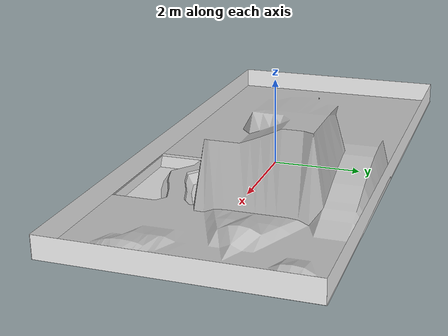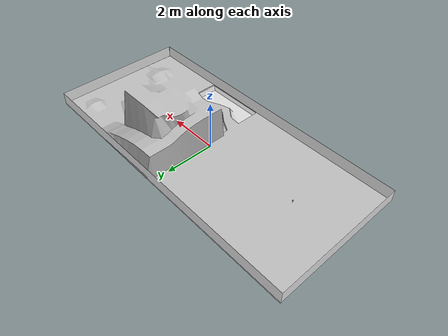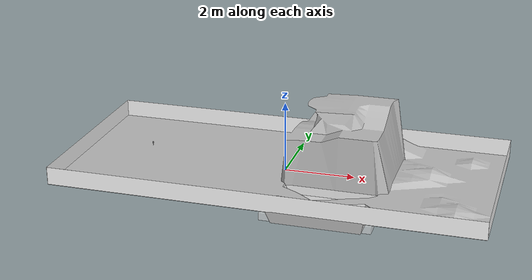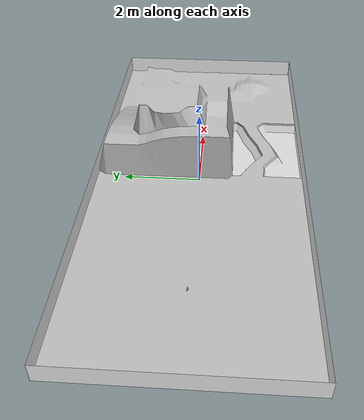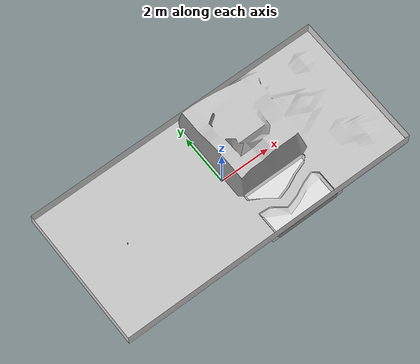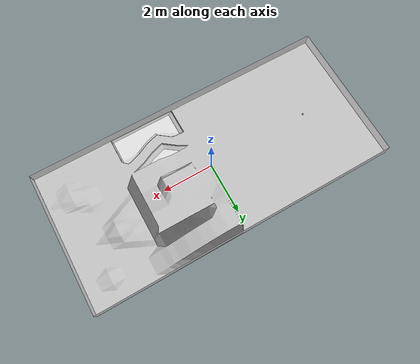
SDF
<sdf version="1.8">
 <world name="fast_world">
  <physics name="1ms" type="ignored">
   <max_step_size>0.005</max_step_size>
   <real_time_update_rate>200</real_time_update_rate>
   <real_time_factor>1.0</real_time_factor>
  </physics>
  <plugin filename="gz-sim-physics-system" name="gz::sim::systems::Physics">
   <engine><filename>gz-physics-dartsim-plugin</filename></engine>
  </plugin>
  <plugin filename="gz-sim-user-commands-system" name="gz::sim::systems::UserCommands"/>
  <plugin filename="gz-sim-scene-broadcaster-system" name="gz::sim::systems::SceneBroadcaster"/>
  <plugin filename="gz-sim-sensors-system" name="gz::sim::systems::Sensors">
   <render_engine>ogre</render_engine>
  </plugin>
  <plugin filename="gz-sim-wind-effects-system" name="gz::sim::systems::WindEffects">
   <force_approximation_scaling_factor>1</force_approximation_scaling_factor>
   <horizontal>
    <magnitude>
     <time_for_rise>0.01</time_for_rise>
     <sin><amplitude_percent>0.8</amplitude_percent><period>4.72</period></sin>
    </magnitude>
    <direction>
     <time_for_rise>0.01</time_for_rise>
     <sin><amplitude>137</amplitude><period>10</period></sin>
    </direction>
   </horizontal>
  </plugin>
  <wind><linear_velocity>0 1 0</linear_velocity></wind>
  <plugin filename="libResetSimPlugin.so" name="reset_plugin::ResetSimPlugin"/>
  <scene><ambient>0.4 0.4 0.4 1</ambient><background>0.7 0.7 0.7 1</background><shadows>false</shadows></scene>
  <light type="directional" name="sun">
   <cast_shadows>false</cast_shadows>
   <pose>0 0 10 0 0 0</pose>
   <diffuse>0.8 0.8 0.8 1</diffuse>
   <specular>0.2 0.2 0.2 1</specular>
   <direction>-0.5 0.1 -0.9</direction>
  </light>
  <include>
   <uri>model://models/wall_short</uri>
   <name>north_wall</name>
   <pose>6 0 0.25 1.57 0 -1.57</pose>
   <static>true</static>
  </include>
  <include>
   <uri>model://models/wall_short</uri>
   <name>south_wall</name>
   <pose>-6 0 0.25 1.57 0 1.57</pose>
   <static>true</static>
  </include>
  <include>
   <uri>model://models/wall_long</uri>
   <name>east_wall</name>
   <pose>0 -2.75 0.25 1.57 0 3.14</pose>
   <static>true</static>
  </include>
  <include>
   <uri>model://models/wall_long</uri>
   <name>west_wall</name>
   <pose>0 2.75 0.25 1.57 0 0</pose>
   <static>true</static>
  </include>
  <include>
   <uri>model://models/terrain</uri>
   <name>base_map</name>
   <pose>0 0 0 0 0 1.57</pose>
   <static>true</static>
  </include>
  <include>
   <uri>model://models/pedestrian_npc</uri>
   <name>pedestrian_npc</name>
   <pose>-4 0 0.3 0 0 0</pose>
   <static>false</static>
  </include>
  <include>
   <uri>model://models/water</uri>
   <name>water</name>
   <static>true</static>
   <pose>1.56 -1.64 -0.15 0 0 0</pose>
  </include>
  <include><uri>model://models/wind_sock</uri><name>wind_sock</name><pose>0.9 1.2 0.3 0 0 0</pose></include>
 </world>
</sdf>

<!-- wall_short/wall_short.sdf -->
<sdf version="1.8">
    <model name="wall_short">
        <static>true</static>
        <link name="wall_short_link">
            <collision name="collision">
                <geometry>
                    <plane>
                        <normal>0 0 1</normal>
                        <size>5.5 0.5</size>
                    </plane>
                </geometry>
            </collision>

            <visual name="visual">
                <geometry>
                    <plane>
                        <normal>0 0 1</normal>
                        <size>5.5 0.5</size>
                    </plane>
                </geometry>
                <material>
                    <ambient>1 1 1 1</ambient>
                    <diffuse>1 1 1 1</diffuse>
                    <specular>0.1 0.1 0.1 1</specular>

                    <pbr>
                        <metal>
                            <albedo_map>forest.png</albedo_map>
                        </metal>
                    </pbr>
                </material>
            </visual>
        </link>
    </model>
</sdf>

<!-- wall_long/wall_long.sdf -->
<sdf version="1.8">
    <model name="wall_short">
        <static>true</static>
        <link name="wall_long_link">
            <collision name="collision">
                <geometry>
                    <plane>
                        <normal>0 0 1</normal>
                        <size>12 0.5</size>
                    </plane>
                </geometry>
            </collision>

            <visual name="visual">
                <geometry>
                    <plane>
                        <normal>0 0 1</normal>
                        <size>12 0.5</size>
                    </plane>
                </geometry>
                <material>
                    <ambient>1 1 1 1</ambient>
                    <diffuse>1 1 1 1</diffuse>
                    <specular>0.1 0.1 0.1 1</specular>

                    <pbr>
                        <metal>
                            <albedo_map>extended_forest.png</albedo_map>
                        </metal>
                    </pbr>
                </material>
            </visual>
        </link>
    </model>
</sdf>

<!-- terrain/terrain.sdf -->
<sdf version="1.8">
    <model name="terrain">
        <static>true</static>
        <link name="terrain_link">
            <collision name="collision">
                <geometry>
                    <mesh>
                        <uri>assets/Terrain_2023_v2.dae</uri>
                        <scale>12.0 12.0 12.0</scale>
                    </mesh>
                </geometry>
                <surface>
                    <friction>
                        <ode>
                            <mu>100</mu>
                            <mu2>100</mu2>
                        </ode>
                    </friction>
                </surface>
            </collision>

            <visual name="visual">
                <geometry>
                    <mesh>
                        <uri>assets/Terrain_2023_v2.dae</uri>
                        <scale>12.0 12.0 12.0</scale>
                    </mesh>
                </geometry>
            </visual>
        </link>
    </model>
</sdf>

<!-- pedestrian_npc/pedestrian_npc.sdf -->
<sdf version="1.8">
    <model name="pedestrian_npc">
        <static>false</static>
        <link name="pedestrian_npc_link">
            <inertial>
                <mass>1000</mass>
                <inertia>
                    <ixx>0.433</ixx>
                    <ixy>0.0</ixy>
                    <ixz>0.0</ixz>
                    <iyy>0.433</iyy>
                    <iyz>0.0</iyz>
                    <izz>0.433</izz>
                </inertia>
            </inertial>
            <collision name="collision">
                <pose>0 0 0.06545 0 0 0</pose>
                <geometry>
                    <box>
                        <size>0.0385 0.0616 0.1309</size>
                    </box>
                </geometry>
            </collision>

            <visual name="visual">
                <pose>0 0 0 0 0 0</pose>
                <geometry>
                    <mesh>
                        <uri>assets/walking.dae</uri>
                        <scale>0.07 0.07 0.07</scale>
                    </mesh>
                </geometry>
            </visual>
        </link>
        <!-- Set up to recieve cmd_vel messages -->
        <plugin filename="gz-sim-velocity-control-system"
            name="gz::sim::systems::VelocityControl">
            <link_name>pedestrian_npc_link</link_name>
        </plugin>

        <plugin filename="gz-sim-pose-publisher-system"
            name="gz::sim::systems::PosePublisher">

            <publish_model_pose>true</publish_model_pose>
            <publish_link_pose>false</publish_link_pose>
            <publish_sensor_pose>false</publish_sensor_pose>
            <publish_collision_pose>false</publish_collision_pose>
            <publish_visual_pose>false</publish_visual_pose>

            <update_frequency>20</update_frequency>

            <use_pose_vector_msg>false</use_pose_vector_msg>

        </plugin>
    </model>
</sdf>

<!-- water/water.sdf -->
<sdf version="1.8">
    <model name="water">
        <static>true</static>
        <link name="water_link">
            <collision name='collision'>
                <pose>0 0 0.04 0 0 0</pose>
                <geometry>
                    <box>
                        <size>0.2 0.01 0.16</size>
                    </box>
                </geometry>
            </collision>

            <visual name='visual'>
                <geometry>
                    <box>
                        <size>3 2.25 0.2</size>
                    </box>
                </geometry>
                <transparency> 0.5 </transparency>
                <material>
                    <ambient>0 0 1 1</ambient>
                    <diffuse>1 1 1 1</diffuse>
                    <specular>0 0.5 0 0</specular>
                    <emissive>0 0 0 1</emissive>
                </material>
            </visual>
        </link>
    </model>
</sdf>

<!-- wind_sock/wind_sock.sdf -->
<sdf version="1.8">
    <model name="wind_sock">
      <static>false</static>
      <link name="roof">
        <pose>0 0 0.5 0 0 0</pose>
        <collision name="collision">
          <geometry>
            <box>
              <size>1 1 0.1</size>
            </box>
          </geometry>
          <surface>
          </surface>
        </collision>
      </link>
      <joint name="roofJoint" type="fixed">
        <parent>world</parent>
        <child>roof</child>
      </joint>
      <link name="sphere_1">
        <pose>0 0 0.93 0 0 0</pose>
        <enable_wind>true</enable_wind>
        <collision name="collision">
          <geometry>
            <sphere>
              <radius>0.02</radius>
            </sphere>
          </geometry>
        </collision>
        <visual name="visual">
          <geometry>
            <sphere>
              <radius>0.02</radius>
            </sphere>
          </geometry>
          <material>
            <ambient>1.0 0 0 1.0</ambient>
            <diffuse>.421 0.225 0.0 1.0</diffuse>
            <specular>1.0 0 0 1.0</specular>
          </material>
        </visual>
      </link>
      <joint name="sphere_1_joint" type="ball">
        <parent>roof</parent>
        <child>sphere_1</child>
      </joint>
      <link name="sphere_2">
        <pose>0 0 0.89 0 0 0</pose>
        <enable_wind>true</enable_wind>
        <collision name="collision">
          <geometry>
            <sphere>
              <radius>0.02</radius>
            </sphere>
          </geometry>
        </collision>
        <visual name="visual">
          <geometry>
            <sphere>
              <radius>0.02</radius>
            </sphere>
          </geometry>
          <material>
            <ambient>1.0 0 0 1.0</ambient>
            <diffuse>.421 0.225 0.0 1.0</diffuse>
            <specular>1.0 0 0 1.0</specular>
          </material>
        </visual>
      </link>
      <joint name="sphere_2_joint" type="ball">
        <parent>sphere_1</parent>
        <child>sphere_2</child>
      </joint>
      <link name="sphere_3">
        <pose>0 0 0.85 0 0 0</pose>
        <enable_wind>true</enable_wind>
        <collision name="collision">
          <geometry>
            <sphere>
              <radius>0.02</radius>
            </sphere>
          </geometry>
        </collision>
        <visual name="visual">
          <geometry>
            <sphere>
              <radius>0.02</radius>
            </sphere>
          </geometry>
          <material>
            <ambient>1.0 0 0 1.0</ambient>
            <diffuse>.421 0.225 0.0 1.0</diffuse>
            <specular>1.0 0 0 1.0</specular>
          </material>
        </visual>
      </link>
      <joint name="sphere_3_joint" type="ball">
        <parent>sphere_2</parent>
        <child>sphere_3</child>
      </joint>
      <link name="sphere_4">
        <pose>0 0 0.81 0 0 0</pose>
        <enable_wind>true</enable_wind>
        <collision name="collision">
          <geometry>
            <sphere>
              <radius>0.02</radius>
            </sphere>
          </geometry>
        </collision>
        <visual name="visual">
          <geometry>
            <sphere>
              <radius>0.02</radius>
            </sphere>
          </geometry>
          <material>
            <ambient>1.0 0 0 1.0</ambient>
            <diffuse>.421 0.225 0.0 1.0</diffuse>
            <specular>1.0 0 0 1.0</specular>
          </material>
        </visual>
      </link>
      <joint name="sphere_4_joint" type="ball">
        <parent>sphere_3</parent>
        <child>sphere_4</child>
      </joint>
      <link name="sphere_5">
        <pose>0 0 0.77 0 0 0</pose>
        <enable_wind>true</enable_wind>
        <collision name="collision">
          <geometry>
            <sphere>
              <radius>0.02</radius>
            </sphere>
          </geometry>
        </collision>
        <visual name="visual">
          <geometry>
            <sphere>
              <radius>0.02</radius>
            </sphere>
          </geometry>
          <material>
            <ambient>1.0 0 0 1.0</ambient>
            <diffuse>.421 0.225 0.0 1.0</diffuse>
            <specular>1.0 0 0 1.0</specular>
          </material>
        </visual>
      </link>
      <joint name="sphere_5_joint" type="ball">
        <parent>sphere_4</parent>
        <child>sphere_5</child>
      </joint>
      <link name="sphere_6">
        <pose>0 0 0.73 0 0 0</pose>
        <enable_wind>true</enable_wind>
        <collision name="collision">
          <geometry>
            <sphere>
              <radius>0.02</radius>
            </sphere>
          </geometry>
        </collision>
        <visual name="visual">
          <geometry>
            <sphere>
              <radius>0.02</radius>
            </sphere>
          </geometry>
          <material>
            <ambient>1.0 0 0 1.0</ambient>
            <diffuse>.421 0.225 0.0 1.0</diffuse>
            <specular>1.0 0 0 1.0</specular>
          </material>
        </visual>
      </link>
      <joint name="sphere_6_joint" type="ball">
        <parent>sphere_5</parent>
        <child>sphere_6</child>
      </joint>
      <link name="sphere_7">
        <pose>0 0 0.69 0 0 0</pose>
        <enable_wind>true</enable_wind>
        <collision name="collision">
          <geometry>
            <sphere>
              <radius>0.02</radius>
            </sphere>
          </geometry>
        </collision>
        <visual name="visual">
          <geometry>
            <sphere>
              <radius>0.02</radius>
            </sphere>
          </geometry>
          <material>
            <ambient>1.0 0 0 1.0</ambient>
            <diffuse>.421 0.225 0.0 1.0</diffuse>
            <specular>1.0 0 0 1.0</specular>
          </material>
        </visual>
      </link>
      <joint name="sphere_7_joint" type="ball">
        <parent>sphere_6</parent>
        <child>sphere_7</child>
      </joint>
      <link name="sphere_8">
        <pose>0 0 0.65 0 0 0</pose>
        <enable_wind>true</enable_wind>
        <collision name="collision">
          <geometry>
            <sphere>
              <radius>0.02</radius>
            </sphere>
          </geometry>
        </collision>
        <visual name="visual">
          <geometry>
            <sphere>
              <radius>0.02</radius>
            </sphere>
          </geometry>
          <material>
            <ambient>1.0 0 0 1.0</ambient>
            <diffuse>.421 0.225 0.0 1.0</diffuse>
            <specular>1.0 0 0 1.0</specular>
          </material>
        </visual>
      </link>
      <joint name="sphere_8_joint" type="ball">
        <parent>sphere_7</parent>
        <child>sphere_8</child>
      </joint>
      <link name="sphere_9">
        <pose>0 0 0.61 0 0 0</pose>
        <enable_wind>true</enable_wind>
        <collision name="collision">
          <geometry>
            <sphere>
              <radius>0.02</radius>
            </sphere>
          </geometry>
        </collision>
        <visual name="visual">
          <geometry>
            <sphere>
              <radius>0.02</radius>
            </sphere>
          </geometry>
          <material>
            <ambient>1.0 0 0 1.0</ambient>
            <diffuse>.421 0.225 0.0 1.0</diffuse>
            <specular>1.0 0 0 1.0</specular>
          </material>
        </visual>
      </link>
      <joint name="sphere_9_joint" type="ball">
        <parent>sphere_8</parent>
        <child>sphere_9</child>
      </joint>
      <link name="sphere_10">
        <pose>0 0 0.57 0 0 0</pose>
        <enable_wind>true</enable_wind>
        <collision name="collision">
          <geometry>
            <sphere>
              <radius>0.02</radius>
            </sphere>
          </geometry>
        </collision>
        <visual name="visual">
          <geometry>
            <sphere>
              <radius>0.02</radius>
            </sphere>
          </geometry>
          <material>
            <ambient>1.0 0 0 1.0</ambient>
            <diffuse>.421 0.225 0.0 1.0</diffuse>
            <specular>1.0 0 0 1.0</specular>
          </material>
        </visual>
      </link>
      <joint name="sphere_10_joint" type="ball">
        <parent>sphere_9</parent>
        <child>sphere_10</child>
      </joint>
    </model>
</sdf>
